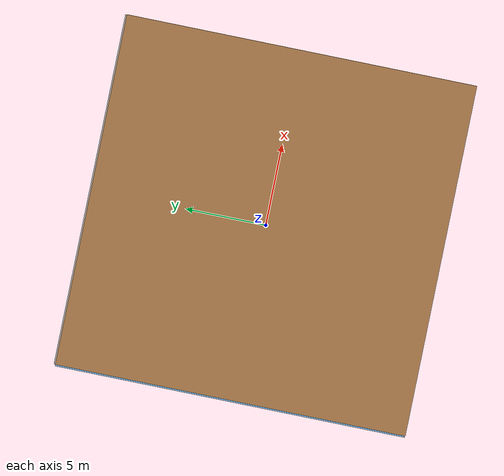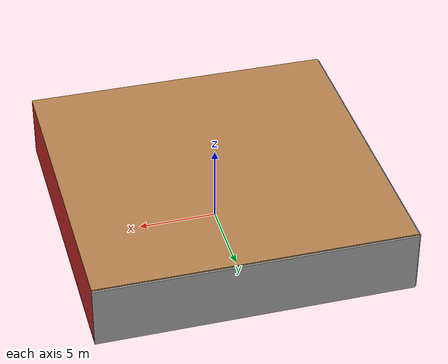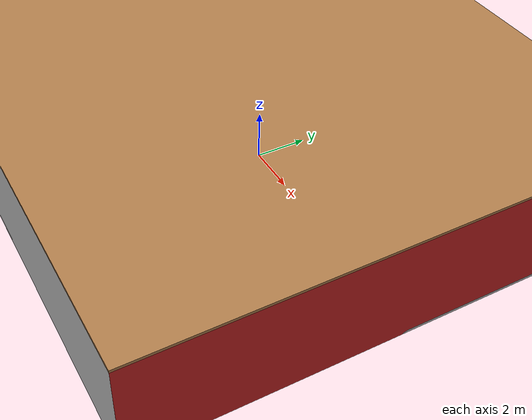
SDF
<sdf version="1.4">
 <world name="default">
  <physics type="ode">
   <max_step_size>0.001</max_step_size>
   <real_time_factor>1</real_time_factor>
   <real_time_update_rate>1000</real_time_update_rate>
   <gravity>0 0 -9.8</gravity>
  </physics>
  <scene><ambient>0.4 0.4 0.4 1</ambient><background>0.7 0.7 0.7 1</background><shadows>1</shadows></scene>
  <model name="Surrounding">
   <static>1</static>
   <link name="Ceiling">
    <collision name="Ceiling_Collision"><geometry><box><size>20 20 0.1</size></box></geometry></collision>
    <visual name="Ceiling_Visual">
     <geometry><box><size>20 20 0.1</size></box></geometry>
     <material>
      <script><uri>file://media/materials/scripts/gazebo.material</uri><name>Gazebo/WoodPallet</name></script>
     </material>
    </visual>
    <pose>0 0 4.05 0 0 0</pose>
   </link>
   <link name="Wall_South">
    <collision name="Wall_South_Collision">
     <geometry><box><size>20 0 4</size></box></geometry>
     <pose>0 0 2 0 -0 0</pose>
    </collision>
    <visual name="Wall_South_Visual">
     <pose>0 0 2 0 -0 0</pose>
     <geometry><box><size>20 0 4</size></box></geometry>
     <material>
      <script><uri>file://media/materials/scripts/gazebo.material</uri><name>Gazebo/CloudySky</name></script>
     </material>
    </visual>
    <velocity_decay><linear>0</linear><angular>0</angular></velocity_decay>
    <pose>0 -10 0 0 -0 0</pose>
   </link>
   <link name="Wall_East">
    <collision name="Wall_21_Collision">
     <geometry><box><size>20 0 4</size></box></geometry>
     <pose>0 0 2 0 -0 0</pose>
    </collision>
    <visual name="Wall_21_Visual">
     <pose>0 0 2 0 -0 0</pose>
     <geometry><box><size>20 0 4</size></box></geometry>
     <material>
      <script><uri>file://media/materials/scripts/gazebo.material</uri><name>Gazebo/RedGlow</name></script>
     </material>
    </visual>
    <velocity_decay><linear>0</linear><angular>0</angular></velocity_decay>
    <pose>10 0 0 0 -0 1.5708</pose>
   </link>
   <link name="Wall_North">
    <collision name="Wall_22_Collision">
     <geometry><box><size>20 0.2 4</size></box></geometry>
     <pose>0 0 2 0 -0 0</pose>
    </collision>
    <visual name="Wall_22_Visual">
     <pose>0 0 2 0 -0 0</pose>
     <geometry><box><size>20 0.2 4</size></box></geometry>
     <material>
      <script><uri>file://media/materials/scripts/gazebo.material</uri><name>Gazebo/LightOff</name></script>
     </material>
    </visual>
    <velocity_decay><linear>0</linear><angular>0</angular></velocity_decay>
    <pose>0 10 0 0 -0 0</pose>
   </link>
   <link name="Wall_West">
    <collision name="Wall_23_Collision">
     <geometry><box><size>20 0.2 4</size></box></geometry>
     <pose>0 0 2 0 -0 0</pose>
    </collision>
    <visual name="Wall_23_Visual">
     <pose>0 0 2 0 -0 0</pose>
     <geometry><box><size>20 0.2 4</size></box></geometry>
     <material>
      <script><uri>file://media/materials/scripts/gazebo.material</uri><name>Gazebo/SkyBlue</name></script>
     </material>
    </visual>
    <velocity_decay><linear>0</linear><angular>0</angular></velocity_decay>
    <pose>-10 0 0 0 0 -1.5708</pose>
   </link>
   <link name="Ground_link">
    <collision name="collision">
     <pose>0 0 .05 0 -0 0</pose>
     <geometry><box><size>20 20 0.1</size></box></geometry>
    </collision>
    <visual name="visual">
     <pose>0 0 .05 0 -0 0</pose>
     <geometry><box><size>20 20 0.1</size></box></geometry>
     <material>
      <script><uri>file://media/materials/scripts/gazebo.material</uri><name>Gazebo/LightOff</name></script>
     </material>
    </visual>
   </link>
   <static>1</static>
  </model>
  <spherical_coordinates>
   <surface_model>EARTH_WGS84</surface_model>
   <latitude_deg>0</latitude_deg>
   <longitude_deg>0</longitude_deg>
   <elevation>0</elevation>
   <heading_deg>0</heading_deg>
  </spherical_coordinates>
  <light name="lightball_0" type="diffuse">
   <diffuse>0.8 0.8 0.8 1</diffuse>
   <specular>0.2 0.2 0.2 1</specular>
   <attenuation>
    <range>100</range>
    <constant>0.7</constant>
    <linear>0.01</linear>
    <quadratic>0.001</quadratic>
   </attenuation>
   <direction>-0.5 0.1 -0.9</direction>
   <pose>-8.43837844863 -0.363147909892 2.61713969813 0 0 0</pose>
  </light>
  <light name="lightball_1" type="diffuse">
   <diffuse>0.8 0.8 0.8 1</diffuse>
   <specular>0.2 0.2 0.2 1</specular>
   <attenuation>
    <range>100</range>
    <constant>0.7</constant>
    <linear>0.01</linear>
    <quadratic>0.001</quadratic>
   </attenuation>
   <direction>-0.5 0.1 -0.9</direction>
   <pose>-0.0441084776189 8.36750042654 2.67987989501 0 0 0</pose>
  </light>
  <light name="lightball_2" type="diffuse">
   <diffuse>0.8 0.8 0.8 1</diffuse>
   <specular>0.2 0.2 0.2 1</specular>
   <attenuation>
    <range>100</range>
    <constant>0.7</constant>
    <linear>0.01</linear>
    <quadratic>0.001</quadratic>
   </attenuation>
   <direction>-0.5 0.1 -0.9</direction>
   <pose>-2.80969333494 4.63614296999 2.42877521391 0 0 0</pose>
  </light>
  <light name="lightball_3" type="diffuse">
   <diffuse>0.8 0.8 0.8 1</diffuse>
   <specular>0.2 0.2 0.2 1</specular>
   <attenuation>
    <range>100</range>
    <constant>0.7</constant>
    <linear>0.01</linear>
    <quadratic>0.001</quadratic>
   </attenuation>
   <direction>-0.5 0.1 -0.9</direction>
   <pose>7.23175498501 -6.67208984795 2.54982255148 0 0 0</pose>
  </light>
  <light name="lightball_4" type="diffuse">
   <diffuse>0.8 0.8 0.8 1</diffuse>
   <specular>0.2 0.2 0.2 1</specular>
   <attenuation>
    <range>100</range>
    <constant>0.7</constant>
    <linear>0.01</linear>
    <quadratic>0.001</quadratic>
   </attenuation>
   <direction>-0.5 0.1 -0.9</direction>
   <pose>-0.406228095885 5.26194667192 2.02112611406 0 0 0</pose>
  </light>
  <light name="lightball_5" type="diffuse">
   <diffuse>0.8 0.8 0.8 1</diffuse>
   <specular>0.2 0.2 0.2 1</specular>
   <attenuation>
    <range>100</range>
    <constant>0.7</constant>
    <linear>0.01</linear>
    <quadratic>0.001</quadratic>
   </attenuation>
   <direction>-0.5 0.1 -0.9</direction>
   <pose>0.865094879902 -9.02839255088 1.66385672973 0 0 0</pose>
  </light>
  <light name="lightball_6" type="diffuse">
   <diffuse>0.8 0.8 0.8 1</diffuse>
   <specular>0.2 0.2 0.2 1</specular>
   <attenuation>
    <range>100</range>
    <constant>0.7</constant>
    <linear>0.01</linear>
    <quadratic>0.001</quadratic>
   </attenuation>
   <direction>-0.5 0.1 -0.9</direction>
   <pose>-0.448781257963 3.34553657385 3.22466242713 0 0 0</pose>
  </light>
  <include>
   <uri>model://textured_shapes</uri>
   <pose>-7.79358038661 4.71598126 0 0 0 0.736107282582</pose>
  </include>
  <include>
   <uri>model://textured_shapes</uri>
   <pose>-0.410847639507 -4.34433564216 0 0 0 2.81402968484</pose>
  </include>
  <include>
   <uri>model://construction_cone</uri>
   <pose>-1.52612439279 4.11763266722 0 0 0 1.40362691366</pose>
  </include>
  <include><uri>model://cabinet</uri><pose>-1.6241359655 8.36313861263 0 0 0 1.25606487715</pose></include>
  <include>
   <uri>model://textured_shapes</uri>
   <pose>1.40003279652 -3.30155381229 0 0 0 2.35145145848</pose>
  </include>
  <include>
   <uri>model://textured_shapes</uri>
   <pose>2.081738968 3.54763512699 0 0 0 0.0777483316915</pose>
  </include>
 </world>
</sdf>

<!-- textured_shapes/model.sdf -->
<sdf version="1.6">
  <model name="textured_shapes">
    <pose>0 0 0.5 0 0 0</pose>
    <link name="box">
      <pose>0 -1.5 0 0 0 0</pose>
      <collision name="collision">
        <geometry>
          <box>
            <size>1 1 1</size>
          </box>
        </geometry>
      </collision>
      <visual name="visual">
        <geometry>
          <box>
            <size>1 1 1</size>
          </box>
        </geometry>
        <material>
          <script>
            <uri>model://../model_source/models/textured_shapes/materials/scripts</uri>
            <uri>model://../model_source/models/textured_shapes/materials/textures</uri>
            <name>TexturedShape/Squares</name>
          </script>
        </material>
      </visual>
    </link>
    <link name="sphere">
      <collision name="collision">
        <geometry>
          <sphere>
            <radius>0.5</radius>
          </sphere>
        </geometry>
      </collision>
      <visual name="visual">
        <geometry>
          <sphere>
            <radius>0.5</radius>
          </sphere>
        </geometry>
        <material>
          <script>
            <uri>model://../model_source/models/textured_shapes/materials/scripts</uri>
            <uri>model://../model_source/models/textured_shapes/materials/textures</uri>
            <name>TexturedShape/Squares</name>
          </script>
        </material>
      </visual>
    </link>
    <link name="cylinder">
      <pose>0 1.5 0 0 0 0</pose>
      <collision name="collision">
        <geometry>
          <cylinder>
            <radius>0.5</radius>
            <length>1</length>
          </cylinder>
        </geometry>
      </collision>
      <visual name="visual">
        <geometry>
          <cylinder>
            <radius>0.5</radius>
            <length>1</length>
          </cylinder>
        </geometry>
        <material>
          <script>
            <uri>model://../model_source/models/textured_shapes/materials/scripts</uri>
            <uri>model://../model_source/models/textured_shapes/materials/textures</uri>
            <name>TexturedShape/Squares</name>
          </script>
        </material>
      </visual>
    </link>
  </model>
</sdf>

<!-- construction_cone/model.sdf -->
<sdf version="1.5">
  <model name="Construction Cone">
    <link name="link">
      <collision name="collision">
        <geometry>
          <mesh>
            <scale>10 10 10</scale>
            <uri>file://isr-testbed/construction_cone/meshes/construction_cone.dae</uri>
          </mesh>
        </geometry>
      </collision>
      <visual name="visual">
        <geometry>
          <mesh>
            <scale>10 10 10</scale>
            <uri>file://isr-testbed/construction_cone/meshes/construction_cone.dae</uri>
          </mesh>
        </geometry>
      </visual>
    </link>
  </model>
</sdf>

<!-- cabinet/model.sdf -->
<sdf version="1.5">
  <model name="cabinet">
    <static>true</static>
    <link name="cabinet_bottom_plate">
      <inertial>
        <pose>0 0 -1 0 0 0</pose>
        <inertia>
          <ixx>2.050000</ixx>
          <ixy>0</ixy>
          <ixz>0</ixz>
          <iyy>2.050000</iyy>
          <iyz>0</iyz>
          <izz>2.050000</izz>
        </inertia>
        <mass>25.000000</mass>
      </inertial>
      <collision name="cabinet_bottom_plate_geom">
        <pose>0 0 0.010000 0 0 0</pose>
        <geometry>
          <box>
            <size>0.450000 0.450000 0.020000</size>
          </box>
        </geometry>
      </collision>
      <visual name="cabinet_bottom_plate_geom_visual">
        <pose>0 0 0.010000 0 0 0</pose>
        <geometry>
          <box>
            <size>0.450000 0.450000 0.020000</size>
          </box>
        </geometry>
        <material>
          <script>
            <uri>model://media/materials/scripts/gazebo.material</uri>
            <name>Gazebo/Wood</name>
          </script>
        </material>
      </visual>
      <collision name="cabinet_bottom_plate_geom_cabinet_back_plate">
        <pose>0.235000 0 0.510000 0 0 0</pose>
        <geometry>
          <box>
            <size>0.020000 0.450000 1.020000</size>
          </box>
        </geometry>
      </collision>
      <visual name="cabinet_bottom_plate_geom_cabinet_back_plate_visual">
        <pose>0.235000 0 0.510000 0 0 0</pose>
        <geometry>
          <box>
            <size>0.020000 0.450000 1.020000</size>
          </box>
        </geometry>
        <material>
          <script>
            <uri>model://media/materials/scripts/gazebo.material</uri>
            <name>Gazebo/Wood</name>
          </script>
        </material>
      </visual>
      <collision name="cabinet_bottom_plate_geom_cabinet_left_plate">
        <pose>0 0.235000 0.510000 0 0 0</pose>
        <geometry>
          <box>
            <size>0.450000 0.020000 1.020000</size>
          </box>
        </geometry>
      </collision>
      <visual name="cabinet_bottom_plate_geom_cabinet_left_plate_visual">
        <pose>0 0.235000 0.510000 0 0 0</pose>
        <geometry>
          <box>
            <size>0.450000 0.020000 1.020000</size>
          </box>
        </geometry>
        <material>
          <script>
            <uri>model://media/materials/scripts/gazebo.material</uri>
            <name>Gazebo/Wood</name>
          </script>
        </material>
      </visual>
      <collision name="cabinet_bottom_plate_geom_cabinet_middle_plate">
        <pose>0 0 0.510000 0 0 0</pose>
        <geometry>
          <box>
            <size>0.450000 0.450000 0.020000</size>
          </box>
        </geometry>
      </collision>
      <visual name="cabinet_bottom_plate_geom_cabinet_middle_plate_visual">
        <pose>0 0 0.510000 0 0 0</pose>
        <geometry>
          <box>
            <size>0.450000 0.450000 0.020000</size>
          </box>
        </geometry>
        <material>
          <script>
            <uri>model://media/materials/scripts/gazebo.material</uri>
            <name>Gazebo/Wood</name>
          </script>
        </material>
      </visual>
      <collision name="cabinet_bottom_plate_geom_cabinet_right_plate">
        <pose>0 -0.235000 0.510000 0 0 0</pose>
        <geometry>
          <box>
            <size>0.450000 0.020000 1.020000</size>
          </box>
        </geometry>
      </collision>
      <visual name="cabinet_bottom_plate_geom_cabinet_right_plate_visual">
        <pose>0 -0.235000 0.510000 0 0 0</pose>
        <geometry>
          <box>
            <size>0.450000 0.020000 1.020000</size>
          </box>
        </geometry>
        <material>
          <script>
            <uri>model://media/materials/scripts/gazebo.material</uri>
            <name>Gazebo/Wood</name>
          </script>
        </material>
      </visual>
      <collision name="cabinet_bottom_plate_geom_cabinet_top_plate">
        <pose>0 0 1.010000 0 0 0</pose>
        <geometry>
          <box>
            <size>0.450000 0.450000 0.020000</size>
          </box>
        </geometry>
      </collision>
      <visual name="cabinet_bottom_plate_geom_cabinet_top_plate_visual">
        <pose>0 0 1.010000 0 0 0</pose>
        <geometry>
          <box>
            <size>0.450000 0.450000 0.020000</size>
          </box>
        </geometry>
        <material>
          <script>
            <uri>model://media/materials/scripts/gazebo.material</uri>
            <name>Gazebo/Wood</name>
          </script>
        </material>
      </visual>
    </link>
  </model>
</sdf>
